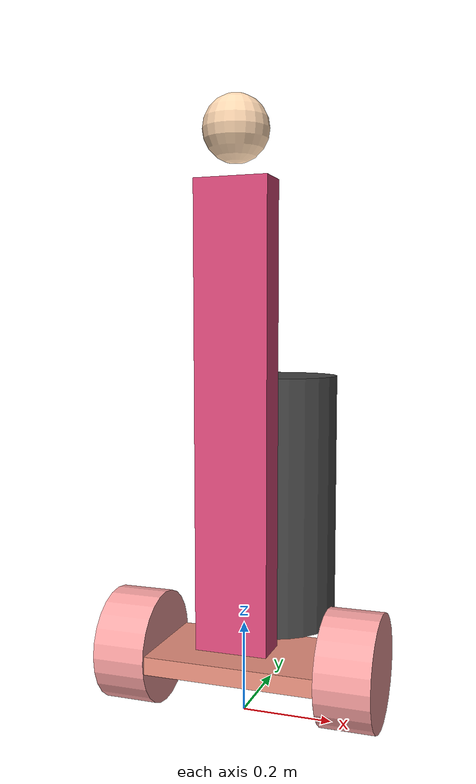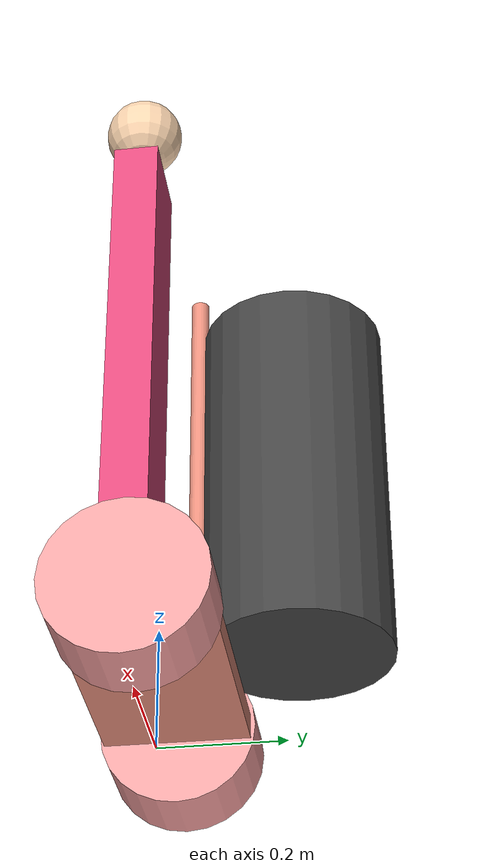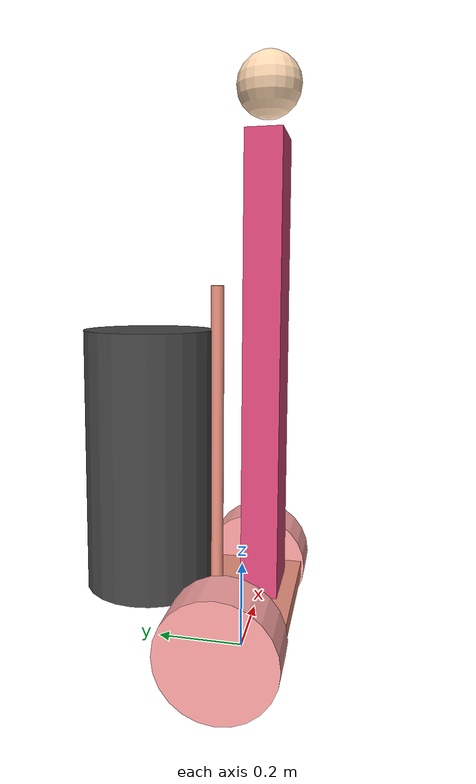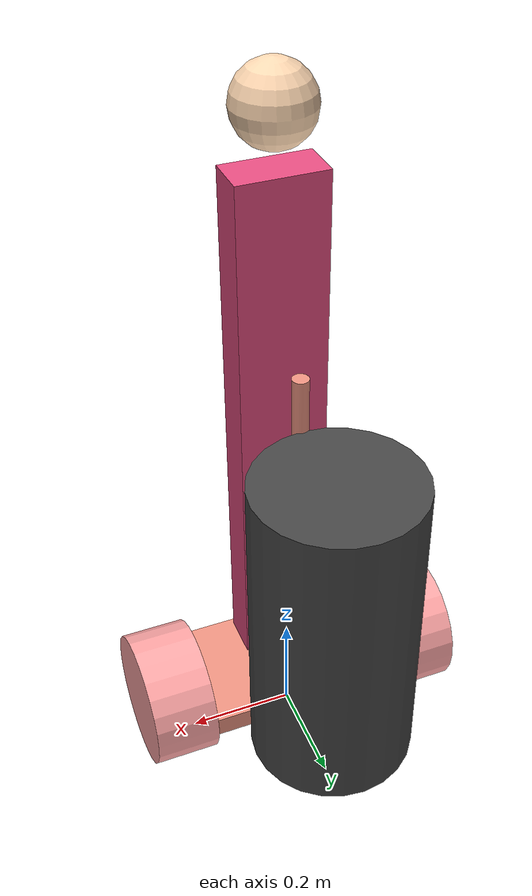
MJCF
<mujoco model="balance">
    <compiler angle="radian"/>
    <size njmax="500" nconmax="100"/>
    <asset>
        <texture type="2d" name="wheel_texture" builtin="checker" mark="edge"
                 rgb1="1 1 1" rgb2="1 0.3 0.3"
                 markrgb="0.3 0.3 0.3" width="1024" height="1024"/>
        <material name="wheel_material" texture="wheel_texture" texuniform="true" texrepeat="20 20"/>
        <texture type="2d" name="body_texture" builtin="gradient" rgb1="0.9 0.3 0.5"
                 rgb2="0.95 0.85 0.5" width="512" height="512"/>
        <material name="body_material" texture="body_texture" texrepeat="4 2" shininess="0.3"/>
        <texture type="2d" name="bag_texture" builtin="gradient" rgb1="0.15 0.15 0.15"
                 rgb2="0.4 0.4 0.4" width="256" height="256"/>
        <material name="bag_material" texture="bag_texture" texrepeat="1 2" shininess="0.3"/>
    </asset>
    <option gravity="0 0 -9.81" viscosity="0.002"/>

    <worldbody>
        <body name="segway" pos="0 0 0.09">
            <joint name="segway_free" type="free" damping="0.5"/>

            <!-- 轮轴杆 -->
            <body name="wheel_axle" pos="0 0 0.03">
                <inertial pos="0.0 -0.09 0.0" quat="0.707107 0 0 0.707107"
                          mass="40.489" diaginertia="0.87993 0.64149 0.31774"/>
                <geom type="box" size="0.3 0.12 0.02" material="body_material"/>

                <!-- ===== 物理人（固定在踏板上） ===== -->
                <body name="human" pos="0 0 0.24">   <!-- 脚底在踏板，质心高0.7m -->
                    <!-- 惯性：质量80kg，近似惯量 -->
                    <inertial pos="0 0 0" mass="100.0"
                              diaginertia="0.6 0.6 0.3"/>
                    <!-- 身体：圆柱，代表躯干 -->
                    <geom type="box" size="0.08 0.04 0.5" pos="0 -0.05 0.3" rgba="0.9 0.3 0.5 1"/>
                    <geom type="sphere" size="0.07" pos="0 -0.05 0.90" rgba="1 0.85 0.7 1"/>
                </body>
            </body>

            <!-- 倒立杆（车把） -->
            <body name="pendulum" pos="0 0 0.05">
                <inertial pos="0.0 0.0 0.0" quat="0.707107 0 0 0.707107"
                          mass="10.48164" diaginertia="0.75267 0.672276 0.0894829"/>
                <geom type="cylinder" size="0.015 0.35" pos="0 0.06 0.35" material="body_material"/>

                <!-- 高尔夫球包（可选） -->
                <body name="golf_bag" pos="0 0.22 0.30">
                    <inertial pos="0 0 0" mass="15.0"
                              diaginertia="1.8 1.8 0.225"/>
                    <geom type="cylinder" size="0.15 0.3" material="bag_material"/>
                </body>
            </body>

            <!-- 左轮 -->
            <body name="l_wheel" pos="-0.25 0 0.034">
                <inertial pos="0 0 0" quat="0.5 0.5 -0.5 0.5"
                          mass="4.23004" diaginertia="0.01832 0.010662 0.0105854"/>
                <joint name="torso_l_wheel" type="hinge" pos="0 0 0" axis="-1 0 0" damping="0.05"/>
                <geom type="cylinder" size="0.1275 0.06" quat="0.707107 0 0.707107 0"
                      material="wheel_material" contype="2" conaffinity="1" friction="2 1 0.8"/>
            </body>

            <!-- 右轮 -->
            <body name="r_wheel" pos="0.25 0 0.034">
                <inertial pos="0 0 0" quat="0.5 0.5 -0.5 0.5"
                          mass="4.23004" diaginertia="0.01832 0.010662 0.0105854"/>
                <joint name="torso_r_wheel" type="hinge" pos="0 0 0" axis="-1 0 0" damping="0.05"/>
                <geom type="cylinder" size="0.1275 0.06" quat="0.707107 0 0.707107 0"
                      material="wheel_material" contype="2" conaffinity="1" friction="2 1 0.8"/>
            </body>
        </body>

    </worldbody>

    <actuator>
        <!-- 力矩控制，限幅加大 -->
        <motor name="motor_l_wheel" joint="torso_l_wheel" gear="1" ctrllimited="true" ctrlrange="-800 800"/>
        <motor name="motor_r_wheel" joint="torso_r_wheel" gear="1" ctrllimited="true" ctrlrange="-800 800"/>
    </actuator>
</mujoco>
